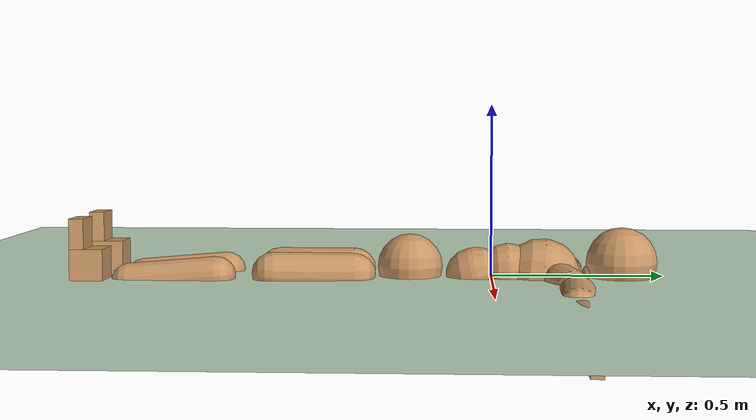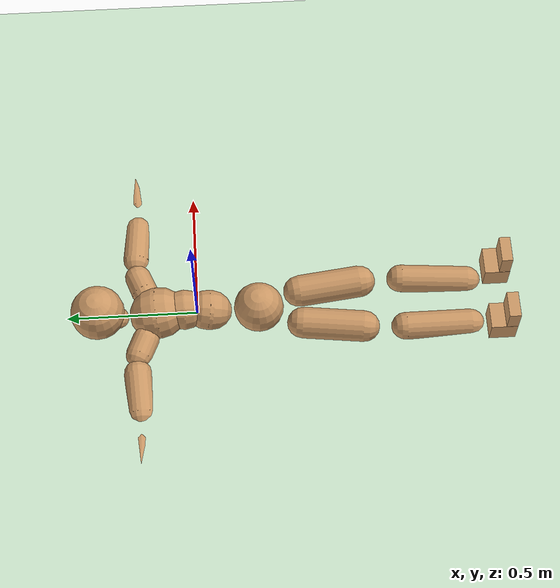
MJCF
<mujoco model="humanoid">
  <compiler coordinate="local"/>
  <default>
    <joint damping="0.0" armature="0.01" stiffness="0.0" limited="true"/>
    <geom conaffinity="1" condim="3" contype="7" margin="0.001" rgba="0.8 0.6 .4 1"/>
  </default>
  <asset>
    <texture type="skybox" builtin="gradient" rgb1=".4 .5 .6" rgb2="0 0 0" width="100" height="100"/>
    <texture builtin="flat" height="1278" mark="cross" markrgb="1 1 1" name="texgeom" random="0.01" rgb1="0.8 0.6 0.4" rgb2="0.8 0.6 0.4" type="cube" width="127"/>
    <texture builtin="checker" height="100" name="texplane" rgb1="0 0 0" rgb2="0.8 0.8 0.8" type="2d" width="100"/>
    <material name="MatPlane" reflectance="0.5" shininess="1" specular="1" texrepeat="60 60" texture="texplane"/>
    <material name="geom" texture="texgeom" texuniform="true"/>
  </asset>
  <worldbody>
    <light cutoff="100" diffuse="1 1 1" dir="-0 0 -1.3" directional="true" exponent="1" pos="0 0 1.3" specular=".1 .1 .1"/>
    <geom conaffinity="1" condim="3" name="floor" pos="0 0 0" rgba="0.8 0.9 0.8 1" size="100 100 .2" type="plane" material="MatPlane"/>
    <body name="Pelvis" pos="-0.0011 -0.238 0.0262">
      <freejoint name="Pelvis"/>
      <geom type="sphere" contype="1" conaffinity="1" density="4629.6296296296305" size="0.0954" pos="0.0000 0.0000 0.0000" name="Pelvis"/>
      <body name="L_Hip" pos="0.059 -0.0818 -0.0189">
        <joint name="L_Hip_x" type="hinge" pos="0 0 0" axis="1 0 0" user="250 2.5 1 500 10 2" armature="0.01" range="-90.0000 90.0000" damping="0" stiffness="0"/>
        <joint name="L_Hip_y" type="hinge" pos="0 0 0" axis="0 1 0" user="250 2.5 1 500 10 2" armature="0.01" range="-90.0000 90.0000" damping="0" stiffness="0"/>
        <joint name="L_Hip_z" type="hinge" pos="0 0 0" axis="0 0 1" user="250 2.5 1 500 10 2" armature="0.01" range="-90.0000 90.0000" damping="0" stiffness="0"/>
        <geom type="capsule" contype="1" conaffinity="1" density="2040.816327" fromto="0.0090 -0.0780 0.0016 0.0361 -0.3120 0.0063" size="0.0619" name="L_Hip"/>
        <body name="L_Knee" pos="0.0451 -0.39 0.0079">
          <joint name="L_Knee_x" type="hinge" pos="0 0 0" axis="1 0 0" user="250 2.5 1 500 10 2" armature="0.01" range="-180.0000 180.0000" damping="0" stiffness="0"/>
          <joint name="L_Knee_y" type="hinge" pos="0 0 0" axis="0 1 0" user="250 2.5 1 500 10 2" armature="0.01" range="-5.6250 5.6250" damping="0" stiffness="0"/>
          <joint name="L_Knee_z" type="hinge" pos="0 0 0" axis="0 0 1" user="250 2.5 1 500 10 2" armature="0.01" range="-5.6250 5.6250" damping="0" stiffness="0"/>
          <geom type="capsule" contype="1" conaffinity="1" density="1234.567901" fromto="-0.0029 -0.0854 -0.0074 -0.0114 -0.3417 -0.0294" size="0.0549" name="L_Knee"/>
          <body name="L_Ankle" pos="-0.0143 -0.4271 -0.0368">
            <joint name="L_Ankle_x" type="hinge" pos="0 0 0" axis="1 0 0" user="150 2.5 1 500 10 2" armature="0.01" range="-90.0000 90.0000" damping="0" stiffness="0"/>
            <joint name="L_Ankle_y" type="hinge" pos="0 0 0" axis="0 1 0" user="150 2.5 1 500 10 2" armature="0.01" range="-90.0000 90.0000" damping="0" stiffness="0"/>
            <joint name="L_Ankle_z" type="hinge" pos="0 0 0" axis="0 0 1" user="150 2.5 1 500 10 2" armature="0.01" range="-90.0000 90.0000" damping="0" stiffness="0"/>
            <geom type="box" density="437.259848" pos="0.0297 -0.0242 0.0211" size="0.0532 0.0482 0.0881" quat="1.0000 0.0000 0.0000 0.0000" name="L_Ankle"/>
            <body name="L_Toe" pos="0.0439 -0.0607 0.1215">
              <joint name="L_Toe_x" type="hinge" pos="0 0 0" axis="1 0 0" user="150 1 1 500 1 1" armature="0.01" range="-90.0000 90.0000" damping="0" stiffness="0"/>
              <joint name="L_Toe_y" type="hinge" pos="0 0 0" axis="0 1 0" user="150 1 1 500 1 1" armature="0.01" range="-45.0000 45.0000" damping="0" stiffness="0"/>
              <joint name="L_Toe_z" type="hinge" pos="0 0 0" axis="0 0 1" user="150 1 1 500 1 1" armature="0.01" range="-45.0000 45.0000" damping="0" stiffness="0"/>
              <geom type="box" density="422.785218" pos="-0.0142 0.0092 0.0245" size="0.0506 0.0209 0.0506" quat="1.0000 0.0000 0.0000 0.0000" name="L_Toe"/>
            </body>
          </body>
        </body>
      </body>
      <body name="R_Hip" pos="-0.0605 -0.0897 -0.0154">
        <joint name="R_Hip_x" type="hinge" pos="0 0 0" axis="1 0 0" user="250 2.5 1 500 10 2" armature="0.01" range="-90.0000 90.0000" damping="0" stiffness="0"/>
        <joint name="R_Hip_y" type="hinge" pos="0 0 0" axis="0 1 0" user="250 2.5 1 500 10 2" armature="0.01" range="-90.0000 90.0000" damping="0" stiffness="0"/>
        <joint name="R_Hip_z" type="hinge" pos="0 0 0" axis="0 0 1" user="250 2.5 1 500 10 2" armature="0.01" range="-90.0000 90.0000" damping="0" stiffness="0"/>
        <geom type="capsule" contype="1" conaffinity="1" density="2040.816327" fromto="-0.0090 -0.0771 -0.0010 -0.0359 -0.3086 -0.0039" size="0.0613" name="R_Hip"/>
        <body name="R_Knee" pos="-0.0449 -0.3857 -0.0049">
          <joint name="R_Knee_x" type="hinge" pos="0 0 0" axis="1 0 0" user="250 2.5 1 500 10 2" armature="0.01" range="-180.0000 180.0000" damping="0" stiffness="0"/>
          <joint name="R_Knee_y" type="hinge" pos="0 0 0" axis="0 1 0" user="250 2.5 1 500 10 2" armature="0.01" range="-5.6250 5.6250" damping="0" stiffness="0"/>
          <joint name="R_Knee_z" type="hinge" pos="0 0 0" axis="0 0 1" user="250 2.5 1 500 10 2" armature="0.01" range="-5.6250 5.6250" damping="0" stiffness="0"/>
          <geom type="capsule" contype="1" conaffinity="1" density="1234.567901" fromto="0.0037 -0.0840 -0.0069 0.0148 -0.3359 -0.0274" size="0.0553" name="R_Knee"/>
          <body name="R_Ankle" pos="0.0185 -0.4199 -0.0343">
            <joint name="R_Ankle_x" type="hinge" pos="0 0 0" axis="1 0 0" user="150 1 1 500 10 2" armature="0.01" range="-90.0000 90.0000" damping="0" stiffness="0"/>
            <joint name="R_Ankle_y" type="hinge" pos="0 0 0" axis="0 1 0" user="150 1 1 500 10 2" armature="0.01" range="-90.0000 90.0000" damping="0" stiffness="0"/>
            <joint name="R_Ankle_z" type="hinge" pos="0 0 0" axis="0 0 1" user="150 1 1 500 10 2" armature="0.01" range="-90.0000 90.0000" damping="0" stiffness="0"/>
            <geom type="box" density="436.396892" pos="-0.0298 -0.0276 0.0255" size="0.0511 0.0502 0.0911" quat="1.0000 0.0000 0.0000 0.0000" name="R_Ankle"/>
            <body name="R_Toe" pos="-0.0346 -0.0624 0.1302">
              <joint name="R_Toe_x" type="hinge" pos="0 0 0" axis="1 0 0" user="150 1 1 500 1 1" armature="0.01" range="-90.0000 90.0000" damping="0" stiffness="0"/>
              <joint name="R_Toe_y" type="hinge" pos="0 0 0" axis="0 1 0" user="150 1 1 500 1 1" armature="0.01" range="-45.0000 45.0000" damping="0" stiffness="0"/>
              <joint name="R_Toe_z" type="hinge" pos="0 0 0" axis="0 0 1" user="150 1 1 500 1 1" armature="0.01" range="-45.0000 45.0000" damping="0" stiffness="0"/>
              <geom type="box" density="423.065807" pos="0.0047 0.0067 0.0219" size="0.0504 0.022 0.0518" quat="1.0000 0.0000 0.0000 0.0000" name="R_Toe"/>
            </body>
          </body>
        </body>
      </body>
      <body name="Torso" pos="0.0043 0.1227 -0.037">
        <joint name="Torso_x" type="hinge" pos="0 0 0" axis="1 0 0" user="500 5 1 500 10 2" armature="0.01" range="-60.0000 60.0000" damping="0" stiffness="0"/>
        <joint name="Torso_y" type="hinge" pos="0 0 0" axis="0 1 0" user="500 5 1 500 10 2" armature="0.01" range="-60.0000 60.0000" damping="0" stiffness="0"/>
        <joint name="Torso_z" type="hinge" pos="0 0 0" axis="0 0 1" user="500 5 1 500 10 2" armature="0.01" range="-60.0000 60.0000" damping="0" stiffness="0"/>
        <geom type="capsule" contype="1" conaffinity="1" density="2040.816327" fromto="0.0019 0.0615 0.0123 0.0023 0.0752 0.0151" size="0.0801" name="Torso"/>
        <body name="Spine" pos="0.0042 0.1367 0.0274">
          <joint name="Spine_x" type="hinge" pos="0 0 0" axis="1 0 0" user="500 5 1 500 10 2" armature="0.01" range="-60.0000 60.0000" damping="0" stiffness="0"/>
          <joint name="Spine_y" type="hinge" pos="0 0 0" axis="0 1 0" user="500 5 1 500 10 2" armature="0.01" range="-60.0000 60.0000" damping="0" stiffness="0"/>
          <joint name="Spine_z" type="hinge" pos="0 0 0" axis="0 0 1" user="500 5 1 500 10 2" armature="0.01" range="-60.0000 60.0000" damping="0" stiffness="0"/>
          <geom type="capsule" contype="1" conaffinity="1" density="2040.816327" fromto="-0.0011 0.0250 0.0010 -0.0014 0.0306 0.0012" size="0.0778" name="Spine"/>
          <body name="Chest" pos="-0.0025 0.0557 0.0022">
            <joint name="Chest_x" type="hinge" pos="0 0 0" axis="1 0 0" user="500 5 1 500 10 2" armature="0.01" range="-60.0000 60.0000" damping="0" stiffness="0"/>
            <joint name="Chest_y" type="hinge" pos="0 0 0" axis="0 1 0" user="500 5 1 500 10 2" armature="0.01" range="-60.0000 60.0000" damping="0" stiffness="0"/>
            <joint name="Chest_z" type="hinge" pos="0 0 0" axis="0 0 1" user="500 5 1 500 10 2" armature="0.01" range="-60.0000 60.0000" damping="0" stiffness="0"/>
            <geom type="capsule" contype="1" conaffinity="1" density="2040.816327" fromto="-0.0037 0.0656 -0.0112 -0.0045 0.0801 -0.0136" size="0.1019" name="Chest"/>
            <body name="Neck" pos="-0.0128 0.2115 -0.0316">
              <joint name="Neck_x" type="hinge" pos="0 0 0" axis="1 0 0" user="150 1 1 250 50 4" armature="0.01" range="-180.0000 180.0000" damping="0" stiffness="0"/>
              <joint name="Neck_y" type="hinge" pos="0 0 0" axis="0 1 0" user="150 1 1 250 50 4" armature="0.01" range="-180.0000 180.0000" damping="0" stiffness="0"/>
              <joint name="Neck_z" type="hinge" pos="0 0 0" axis="0 0 1" user="150 1 1 250 50 4" armature="0.01" range="-180.0000 180.0000" damping="0" stiffness="0"/>
              <geom type="capsule" contype="1" conaffinity="1" density="1000" fromto="0.0020 0.0183 0.0103 0.0082 0.0732 0.0413" size="0.0448" name="Neck"/>
              <body name="Head" pos="0.0102 0.0915 0.0516">
                <joint name="Head_x" type="hinge" pos="0 0 0" axis="1 0 0" user="150 1 1 250 50 4" armature="0.01" range="-90.0000 90.0000" damping="0" stiffness="0"/>
                <joint name="Head_y" type="hinge" pos="0 0 0" axis="0 1 0" user="150 1 1 250 50 4" armature="0.01" range="-90.0000 90.0000" damping="0" stiffness="0"/>
                <joint name="Head_z" type="hinge" pos="0 0 0" axis="0 0 1" user="150 1 1 250 50 4" armature="0.01" range="-90.0000 90.0000" damping="0" stiffness="0"/>
                <geom type="sphere" contype="1" conaffinity="1" density="1000" size="0.1039" pos="0.0000 0.0000 0.0000" name="Head"/>
              </body>
            </body>
            <body name="L_Thorax" pos="0.0694 0.1134 -0.0192">
              <joint name="L_Thorax_x" type="hinge" pos="0 0 0" axis="1 0 0" user="200 2 1 500 50 4" armature="0.01" range="-180.0000 180.0000" damping="0" stiffness="0"/>
              <joint name="L_Thorax_y" type="hinge" pos="0 0 0" axis="0 1 0" user="200 2 1 500 50 4" armature="0.01" range="-180.0000 180.0000" damping="0" stiffness="0"/>
              <joint name="L_Thorax_z" type="hinge" pos="0 0 0" axis="0 0 1" user="200 2 1 500 50 4" armature="0.01" range="-180.0000 180.0000" damping="0" stiffness="0"/>
              <geom type="capsule" contype="1" conaffinity="1" density="1000" fromto="0.0238 0.0090 -0.0034 0.0954 0.0362 -0.0138" size="0.0517" name="L_Thorax"/>
              <body name="L_Shoulder" pos="0.1192 0.0452 -0.0172">
                <joint name="L_Shoulder_x" type="hinge" pos="0 0 0" axis="1 0 0" user="200 2 1 500 50 4" armature="0.01" range="-180.0000 180.0000" damping="0" stiffness="0"/>
                <joint name="L_Shoulder_y" type="hinge" pos="0 0 0" axis="0 1 0" user="200 2 1 500 50 4" armature="0.01" range="-180.0000 180.0000" damping="0" stiffness="0"/>
                <joint name="L_Shoulder_z" type="hinge" pos="0 0 0" axis="0 0 1" user="200 2 1 500 50 4" armature="0.01" range="-180.0000 180.0000" damping="0" stiffness="0"/>
                <geom type="capsule" contype="1" conaffinity="1" density="1000" fromto="0.0511 -0.0032 -0.0042 0.2042 -0.0126 -0.0170" size="0.0537" name="L_Shoulder"/>
                <body name="L_Elbow" pos="0.2553 -0.0158 -0.0212">
                  <joint name="L_Elbow_x" type="hinge" pos="0 0 0" axis="1 0 0" user="150 1 1 150 10 2" armature="0.01" range="-720.0000 720.0000" damping="0" stiffness="0"/>
                  <joint name="L_Elbow_y" type="hinge" pos="0 0 0" axis="0 1 0" user="150 1 1 150 10 2" armature="0.01" range="-720.0000 720.0000" damping="0" stiffness="0"/>
                  <joint name="L_Elbow_z" type="hinge" pos="0 0 0" axis="0 0 1" user="150 1 1 150 10 2" armature="0.01" range="-720.0000 720.0000" damping="0" stiffness="0"/>
                  <geom type="capsule" contype="1" conaffinity="1" density="1000" fromto="0.0529 0.0025 -0.0016 0.2115 0.0099 -0.0064" size="0.0416" name="L_Elbow"/>
                  <body name="L_Wrist" pos="0.2644 0.0123 -0.008">
                    <joint name="L_Wrist_x" type="hinge" pos="0 0 0" axis="1 0 0" user="100 1 1 150 1 1" armature="0.01" range="-180.0000 180.0000" damping="0" stiffness="0"/>
                    <joint name="L_Wrist_y" type="hinge" pos="0 0 0" axis="0 1 0" user="100 1 1 150 1 1" armature="0.01" range="-180.0000 180.0000" damping="0" stiffness="0"/>
                    <joint name="L_Wrist_z" type="hinge" pos="0 0 0" axis="0 0 1" user="100 1 1 150 1 1" armature="0.01" range="-180.0000 180.0000" damping="0" stiffness="0"/>
                    <geom type="capsule" contype="1" conaffinity="1" density="1000" fromto="0.0172 -0.0021 -0.0031 0.0689 -0.0085 -0.0124" size="0.0338" name="L_Wrist"/>
                    <body name="L_Hand" pos="0.0861 -0.0106 -0.0156">
                      <joint name="L_Hand_x" type="hinge" pos="0 0 0" axis="1 0 0" user="50 1 1 150 1 1" armature="0.01" range="-180.0000 180.0000" damping="0" stiffness="0"/>
                      <joint name="L_Hand_y" type="hinge" pos="0 0 0" axis="0 1 0" user="50 1 1 150 1 1" armature="0.01" range="-180.0000 180.0000" damping="0" stiffness="0"/>
                      <joint name="L_Hand_z" type="hinge" pos="0 0 0" axis="0 0 1" user="50 1 1 150 1 1" armature="0.01" range="-180.0000 180.0000" damping="0" stiffness="0"/>
                      <geom type="box" density="412.580938" pos="0.0514 0.0025 -0.0062" size="0.0605 0.0164 0.0564" quat="1.0000 0.0000 0.0000 0.0000" name="L_Hand"/>
                    </body>
                  </body>
                </body>
              </body>
            </body>
            <body name="R_Thorax" pos="-0.0811 0.1122 -0.0236">
              <joint name="R_Thorax_x" type="hinge" pos="0 0 0" axis="1 0 0" user="200 2 1 150 10 2" armature="0.01" range="-180.0000 180.0000" damping="0" stiffness="0"/>
              <joint name="R_Thorax_y" type="hinge" pos="0 0 0" axis="0 1 0" user="200 2 1 150 10 2" armature="0.01" range="-180.0000 180.0000" damping="0" stiffness="0"/>
              <joint name="R_Thorax_z" type="hinge" pos="0 0 0" axis="0 0 1" user="200 2 1 150 10 2" armature="0.01" range="-180.0000 180.0000" damping="0" stiffness="0"/>
              <geom type="capsule" contype="1" conaffinity="1" density="1000" fromto="-0.0222 0.0094 -0.0014 -0.0887 0.0376 -0.0057" size="0.0522" name="R_Thorax"/>
              <body name="R_Shoulder" pos="-0.1109 0.047 -0.0071">
                <joint name="R_Shoulder_x" type="hinge" pos="0 0 0" axis="1 0 0" user="200 2 1 250 10 2" armature="0.01" range="-180.0000 180.0000" damping="0" stiffness="0"/>
                <joint name="R_Shoulder_y" type="hinge" pos="0 0 0" axis="0 1 0" user="200 2 1 250 10 2" armature="0.01" range="-180.0000 180.0000" damping="0" stiffness="0"/>
                <joint name="R_Shoulder_z" type="hinge" pos="0 0 0" axis="0 0 1" user="200 2 1 250 10 2" armature="0.01" range="-180.0000 180.0000" damping="0" stiffness="0"/>
                <geom type="capsule" contype="1" conaffinity="1" density="1000" fromto="-0.0521 -0.0032 -0.0059 -0.2086 -0.0128 -0.0234" size="0.0549" name="R_Shoulder"/>
                <body name="R_Elbow" pos="-0.2607 -0.016 -0.0293">
                  <joint name="R_Elbow_x" type="hinge" pos="0 0 0" axis="1 0 0" user="150 1 1 150 10 2" armature="0.01" range="-720.0000 720.0000" damping="0" stiffness="0"/>
                  <joint name="R_Elbow_y" type="hinge" pos="0 0 0" axis="0 1 0" user="150 1 1 150 10 2" armature="0.01" range="-720.0000 720.0000" damping="0" stiffness="0"/>
                  <joint name="R_Elbow_z" type="hinge" pos="0 0 0" axis="0 0 1" user="150 1 1 150 10 2" armature="0.01" range="-720.0000 720.0000" damping="0" stiffness="0"/>
                  <geom type="capsule" contype="1" conaffinity="1" density="1000" fromto="-0.0540 0.0016 -0.0013 -0.2159 0.0062 -0.0051" size="0.0425" name="R_Elbow"/>
                  <body name="R_Wrist" pos="-0.2699 0.0078 -0.0063">
                    <joint name="R_Wrist_x" type="hinge" pos="0 0 0" axis="1 0 0" user="100 1 1 150 1 1" armature="0.01" range="-180.0000 180.0000" damping="0" stiffness="0"/>
                    <joint name="R_Wrist_y" type="hinge" pos="0 0 0" axis="0 1 0" user="100 1 1 150 1 1" armature="0.01" range="-180.0000 180.0000" damping="0" stiffness="0"/>
                    <joint name="R_Wrist_z" type="hinge" pos="0 0 0" axis="0 0 1" user="100 1 1 150 1 1" armature="0.01" range="-180.0000 180.0000" damping="0" stiffness="0"/>
                    <geom type="capsule" contype="1" conaffinity="1" density="1000" fromto="-0.0178 -0.0017 -0.0020 -0.0710 -0.0069 -0.0081" size="0.0347" name="R_Wrist"/>
                    <body name="R_Hand" pos="-0.0888 -0.0086 -0.0102">
                      <joint name="R_Hand_x" type="hinge" pos="0 0 0" axis="1 0 0" user="50 1 1 150 1 1" armature="0.01" range="-180.0000 180.0000" damping="0" stiffness="0"/>
                      <joint name="R_Hand_y" type="hinge" pos="0 0 0" axis="0 1 0" user="50 1 1 150 1 1" armature="0.01" range="-180.0000 180.0000" damping="0" stiffness="0"/>
                      <joint name="R_Hand_z" type="hinge" pos="0 0 0" axis="0 0 1" user="50 1 1 150 1 1" armature="0.01" range="-180.0000 180.0000" damping="0" stiffness="0"/>
                      <geom type="box" density="414.902054" pos="-0.0487 0.0021 -0.0089" size="0.0594 0.0173 0.0578" quat="1.0000 0.0000 0.0000 0.0000" name="R_Hand"/>
                    </body>
                  </body>
                </body>
              </body>
            </body>
          </body>
        </body>
      </body>
    </body>
  </worldbody>
  <actuator>
    <motor name="L_Hip_x" joint="L_Hip_x" gear="1"/>
    <motor name="L_Hip_y" joint="L_Hip_y" gear="1"/>
    <motor name="L_Hip_z" joint="L_Hip_z" gear="1"/>
    <motor name="L_Knee_x" joint="L_Knee_x" gear="1"/>
    <motor name="L_Knee_y" joint="L_Knee_y" gear="1"/>
    <motor name="L_Knee_z" joint="L_Knee_z" gear="1"/>
    <motor name="L_Ankle_x" joint="L_Ankle_x" gear="1"/>
    <motor name="L_Ankle_y" joint="L_Ankle_y" gear="1"/>
    <motor name="L_Ankle_z" joint="L_Ankle_z" gear="1"/>
    <motor name="L_Toe_x" joint="L_Toe_x" gear="1"/>
    <motor name="L_Toe_y" joint="L_Toe_y" gear="1"/>
    <motor name="L_Toe_z" joint="L_Toe_z" gear="1"/>
    <motor name="R_Hip_x" joint="R_Hip_x" gear="1"/>
    <motor name="R_Hip_y" joint="R_Hip_y" gear="1"/>
    <motor name="R_Hip_z" joint="R_Hip_z" gear="1"/>
    <motor name="R_Knee_x" joint="R_Knee_x" gear="1"/>
    <motor name="R_Knee_y" joint="R_Knee_y" gear="1"/>
    <motor name="R_Knee_z" joint="R_Knee_z" gear="1"/>
    <motor name="R_Ankle_x" joint="R_Ankle_x" gear="1"/>
    <motor name="R_Ankle_y" joint="R_Ankle_y" gear="1"/>
    <motor name="R_Ankle_z" joint="R_Ankle_z" gear="1"/>
    <motor name="R_Toe_x" joint="R_Toe_x" gear="1"/>
    <motor name="R_Toe_y" joint="R_Toe_y" gear="1"/>
    <motor name="R_Toe_z" joint="R_Toe_z" gear="1"/>
    <motor name="Torso_x" joint="Torso_x" gear="1"/>
    <motor name="Torso_y" joint="Torso_y" gear="1"/>
    <motor name="Torso_z" joint="Torso_z" gear="1"/>
    <motor name="Spine_x" joint="Spine_x" gear="1"/>
    <motor name="Spine_y" joint="Spine_y" gear="1"/>
    <motor name="Spine_z" joint="Spine_z" gear="1"/>
    <motor name="Chest_x" joint="Chest_x" gear="1"/>
    <motor name="Chest_y" joint="Chest_y" gear="1"/>
    <motor name="Chest_z" joint="Chest_z" gear="1"/>
    <motor name="Neck_x" joint="Neck_x" gear="1"/>
    <motor name="Neck_y" joint="Neck_y" gear="1"/>
    <motor name="Neck_z" joint="Neck_z" gear="1"/>
    <motor name="Head_x" joint="Head_x" gear="1"/>
    <motor name="Head_y" joint="Head_y" gear="1"/>
    <motor name="Head_z" joint="Head_z" gear="1"/>
    <motor name="L_Thorax_x" joint="L_Thorax_x" gear="1"/>
    <motor name="L_Thorax_y" joint="L_Thorax_y" gear="1"/>
    <motor name="L_Thorax_z" joint="L_Thorax_z" gear="1"/>
    <motor name="L_Shoulder_x" joint="L_Shoulder_x" gear="1"/>
    <motor name="L_Shoulder_y" joint="L_Shoulder_y" gear="1"/>
    <motor name="L_Shoulder_z" joint="L_Shoulder_z" gear="1"/>
    <motor name="L_Elbow_x" joint="L_Elbow_x" gear="1"/>
    <motor name="L_Elbow_y" joint="L_Elbow_y" gear="1"/>
    <motor name="L_Elbow_z" joint="L_Elbow_z" gear="1"/>
    <motor name="L_Wrist_x" joint="L_Wrist_x" gear="1"/>
    <motor name="L_Wrist_y" joint="L_Wrist_y" gear="1"/>
    <motor name="L_Wrist_z" joint="L_Wrist_z" gear="1"/>
    <motor name="L_Hand_x" joint="L_Hand_x" gear="1"/>
    <motor name="L_Hand_y" joint="L_Hand_y" gear="1"/>
    <motor name="L_Hand_z" joint="L_Hand_z" gear="1"/>
    <motor name="R_Thorax_x" joint="R_Thorax_x" gear="1"/>
    <motor name="R_Thorax_y" joint="R_Thorax_y" gear="1"/>
    <motor name="R_Thorax_z" joint="R_Thorax_z" gear="1"/>
    <motor name="R_Shoulder_x" joint="R_Shoulder_x" gear="1"/>
    <motor name="R_Shoulder_y" joint="R_Shoulder_y" gear="1"/>
    <motor name="R_Shoulder_z" joint="R_Shoulder_z" gear="1"/>
    <motor name="R_Elbow_x" joint="R_Elbow_x" gear="1"/>
    <motor name="R_Elbow_y" joint="R_Elbow_y" gear="1"/>
    <motor name="R_Elbow_z" joint="R_Elbow_z" gear="1"/>
    <motor name="R_Wrist_x" joint="R_Wrist_x" gear="1"/>
    <motor name="R_Wrist_y" joint="R_Wrist_y" gear="1"/>
    <motor name="R_Wrist_z" joint="R_Wrist_z" gear="1"/>
    <motor name="R_Hand_x" joint="R_Hand_x" gear="1"/>
    <motor name="R_Hand_y" joint="R_Hand_y" gear="1"/>
    <motor name="R_Hand_z" joint="R_Hand_z" gear="1"/>
  </actuator>
  <contact>
    <exclude body1="Torso" body2="Chest"/>
    <exclude body1="Head" body2="Chest"/>
    <exclude body1="R_Knee" body2="R_Toe"/>
    <exclude body1="R_Knee" body2="L_Ankle"/>
    <exclude body1="R_Knee" body2="L_Toe"/>
    <exclude body1="L_Knee" body2="L_Toe"/>
    <exclude body1="L_Knee" body2="R_Ankle"/>
    <exclude body1="L_Knee" body2="R_Toe"/>
    <exclude body1="L_Shoulder" body2="Chest"/>
    <exclude body1="R_Shoulder" body2="Chest"/>
  </contact>
  <sensor/>
  <size njmax="700" nconmax="700"/>
</mujoco>
